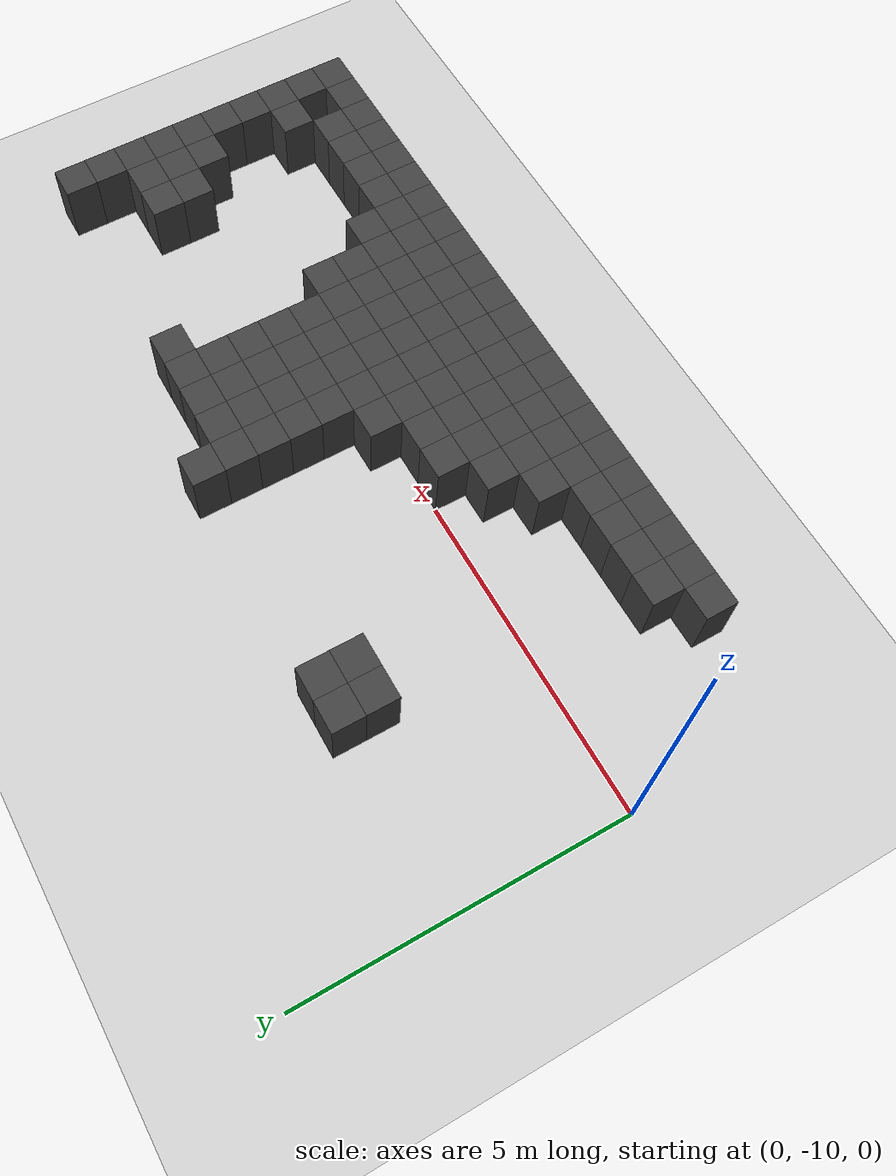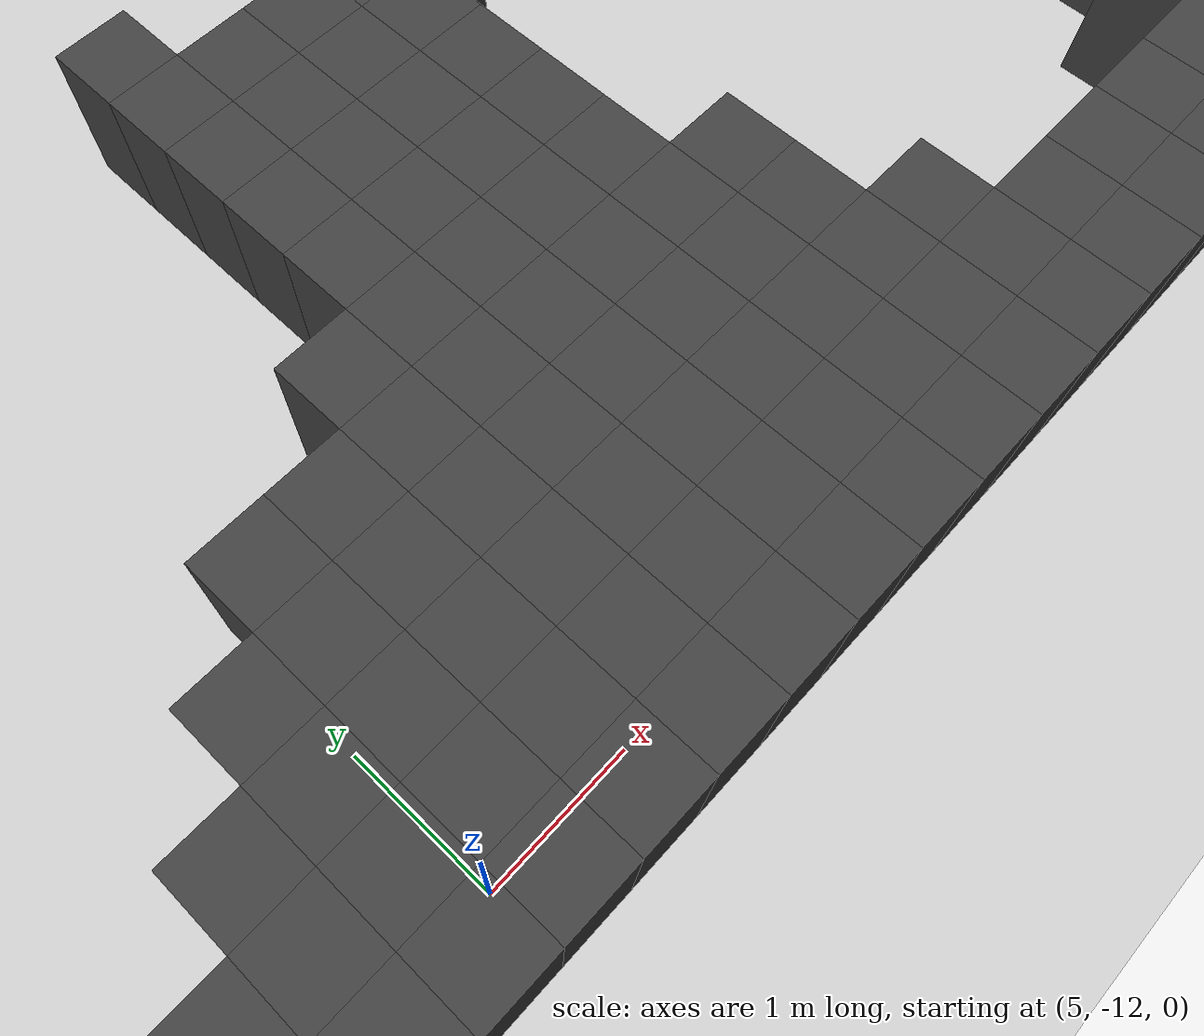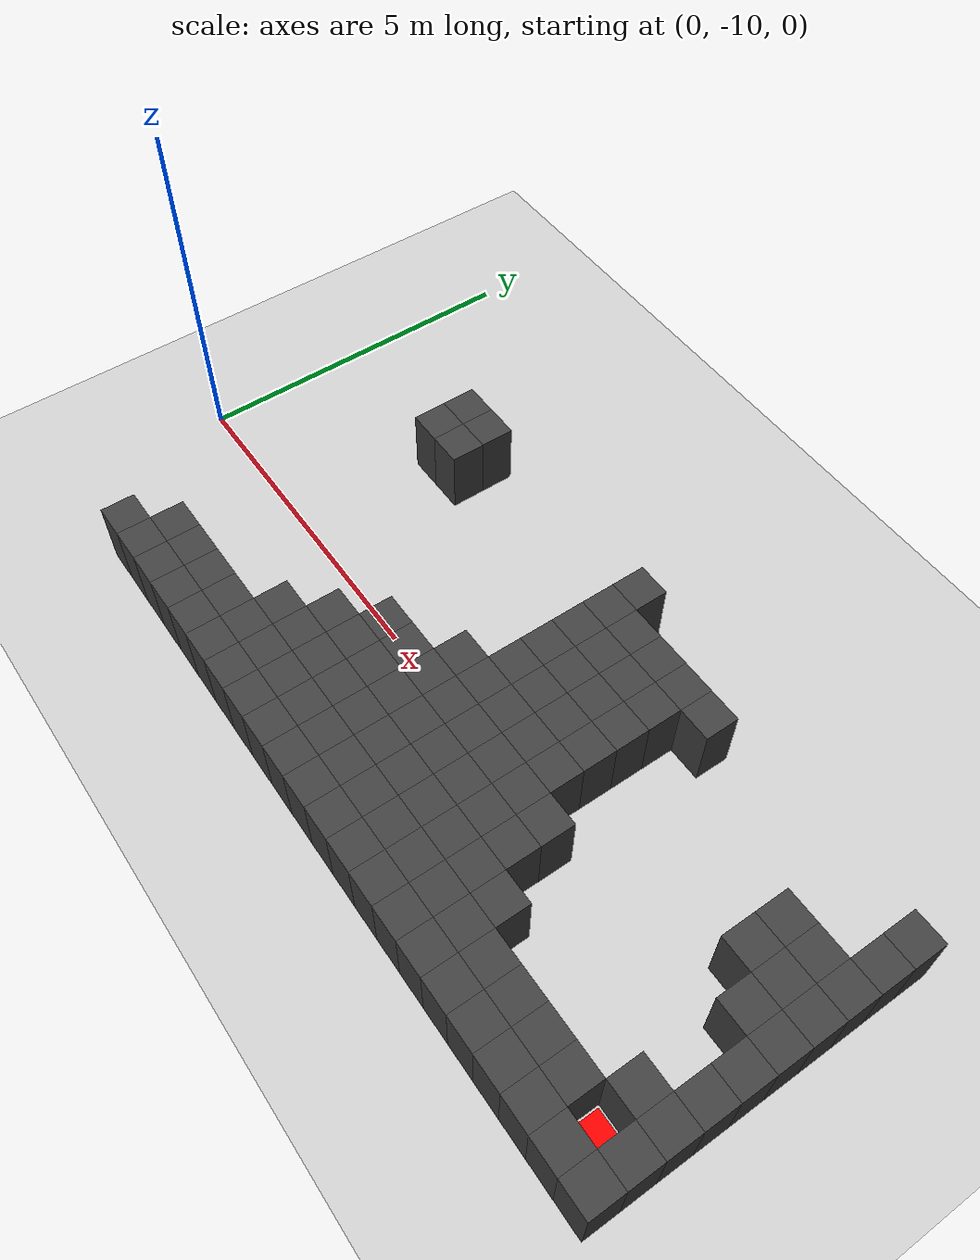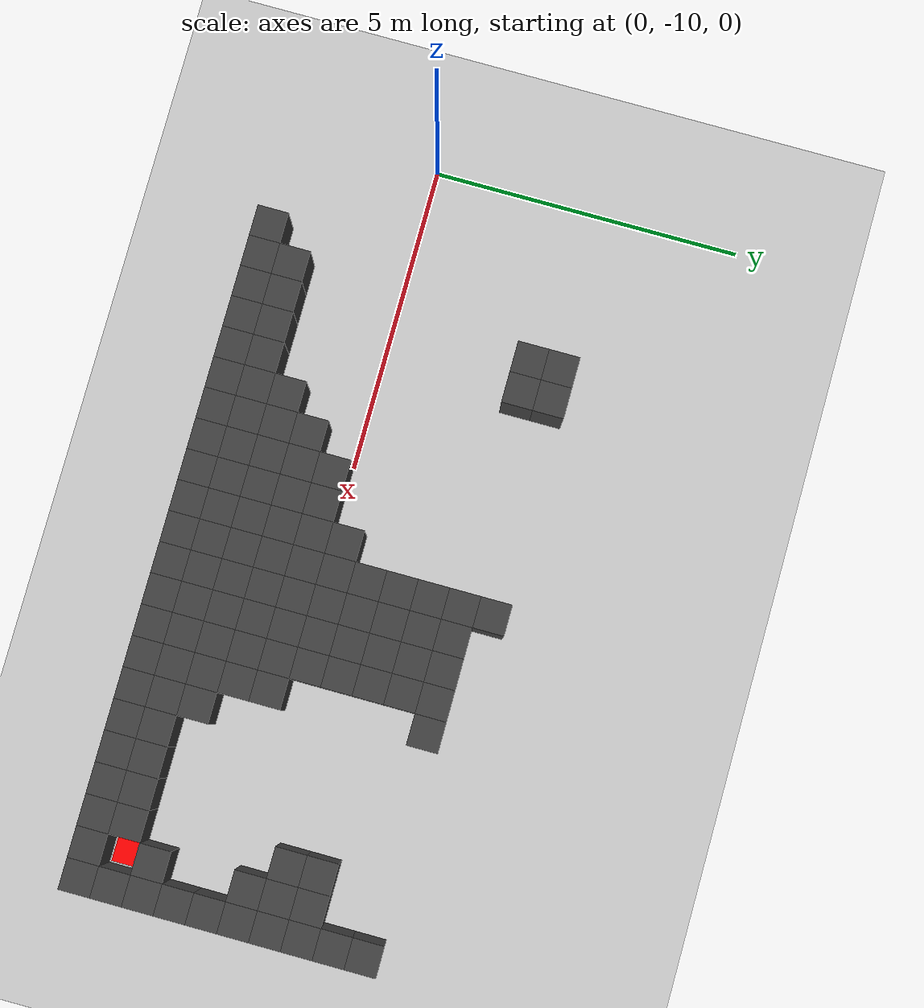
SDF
<sdf version="1.7">
 <world name="map_9405">
  <model name="ground_plane">
   <static>true</static>
   <link name="link">
    <collision name="collision">
     <geometry><plane><normal>0 0 1</normal><size>200 200</size></plane></geometry>
    </collision>
    <visual name="visual">
     <geometry><plane><normal>0 0 1</normal><size>200 200</size></plane></geometry>
     <material><ambient>0.8 0.8 0.8 1</ambient><diffuse>0.8 0.8 0.8 1</diffuse></material>
    </visual>
   </link>
  </model>
  <model name="maze_environment">
   <static>true</static>
   <link name="wall_666">
    <pose>2.750 -7.250 0.500 0 0 0</pose>
    <collision name="col"><geometry><box><size>0.5 0.5 1.0</size></box></geometry></collision>
    <visual name="vis">
     <geometry><box><size>0.5 0.5 1.0</size></box></geometry>
     <material><ambient>0.15 0.15 0.15 1</ambient><diffuse>0.25 0.25 0.25 1</diffuse></material>
    </visual>
   </link>
   <link name="wall_667">
    <pose>3.250 -7.250 0.500 0 0 0</pose>
    <collision name="col"><geometry><box><size>0.5 0.5 1.0</size></box></geometry></collision>
    <visual name="vis">
     <geometry><box><size>0.5 0.5 1.0</size></box></geometry>
     <material><ambient>0.15 0.15 0.15 1</ambient><diffuse>0.25 0.25 0.25 1</diffuse></material>
    </visual>
   </link>
   <link name="wall_668">
    <pose>6.750 -7.250 0.500 0 0 0</pose>
    <collision name="col"><geometry><box><size>0.5 0.5 1.0</size></box></geometry></collision>
    <visual name="vis">
     <geometry><box><size>0.5 0.5 1.0</size></box></geometry>
     <material><ambient>0.15 0.15 0.15 1</ambient><diffuse>0.25 0.25 0.25 1</diffuse></material>
    </visual>
   </link>
   <link name="wall_684">
    <pose>2.750 -7.750 0.500 0 0 0</pose>
    <collision name="col"><geometry><box><size>0.5 0.5 1.0</size></box></geometry></collision>
    <visual name="vis">
     <geometry><box><size>0.5 0.5 1.0</size></box></geometry>
     <material><ambient>0.15 0.15 0.15 1</ambient><diffuse>0.25 0.25 0.25 1</diffuse></material>
    </visual>
   </link>
   <link name="wall_685">
    <pose>3.250 -7.750 0.500 0 0 0</pose>
    <collision name="col"><geometry><box><size>0.5 0.5 1.0</size></box></geometry></collision>
    <visual name="vis">
     <geometry><box><size>0.5 0.5 1.0</size></box></geometry>
     <material><ambient>0.15 0.15 0.15 1</ambient><diffuse>0.25 0.25 0.25 1</diffuse></material>
    </visual>
   </link>
   <link name="wall_686">
    <pose>6.750 -7.750 0.500 0 0 0</pose>
    <collision name="col"><geometry><box><size>0.5 0.5 1.0</size></box></geometry></collision>
    <visual name="vis">
     <geometry><box><size>0.5 0.5 1.0</size></box></geometry>
     <material><ambient>0.15 0.15 0.15 1</ambient><diffuse>0.25 0.25 0.25 1</diffuse></material>
    </visual>
   </link>
   <link name="wall_687">
    <pose>7.250 -7.750 0.500 0 0 0</pose>
    <collision name="col"><geometry><box><size>0.5 0.5 1.0</size></box></geometry></collision>
    <visual name="vis">
     <geometry><box><size>0.5 0.5 1.0</size></box></geometry>
     <material><ambient>0.15 0.15 0.15 1</ambient><diffuse>0.25 0.25 0.25 1</diffuse></material>
    </visual>
   </link>
   <link name="wall_688">
    <pose>7.750 -7.750 0.500 0 0 0</pose>
    <collision name="col"><geometry><box><size>0.5 0.5 1.0</size></box></geometry></collision>
    <visual name="vis">
     <geometry><box><size>0.5 0.5 1.0</size></box></geometry>
     <material><ambient>0.15 0.15 0.15 1</ambient><diffuse>0.25 0.25 0.25 1</diffuse></material>
    </visual>
   </link>
   <link name="wall_689">
    <pose>8.250 -7.750 0.500 0 0 0</pose>
    <collision name="col"><geometry><box><size>0.5 0.5 1.0</size></box></geometry></collision>
    <visual name="vis">
     <geometry><box><size>0.5 0.5 1.0</size></box></geometry>
     <material><ambient>0.15 0.15 0.15 1</ambient><diffuse>0.25 0.25 0.25 1</diffuse></material>
    </visual>
   </link>
   <link name="wall_690">
    <pose>8.750 -7.750 0.500 0 0 0</pose>
    <collision name="col"><geometry><box><size>0.5 0.5 1.0</size></box></geometry></collision>
    <visual name="vis">
     <geometry><box><size>0.5 0.5 1.0</size></box></geometry>
     <material><ambient>0.15 0.15 0.15 1</ambient><diffuse>0.25 0.25 0.25 1</diffuse></material>
    </visual>
   </link>
   <link name="wall_691">
    <pose>12.250 -7.750 0.500 0 0 0</pose>
    <collision name="col"><geometry><box><size>0.5 0.5 1.0</size></box></geometry></collision>
    <visual name="vis">
     <geometry><box><size>0.5 0.5 1.0</size></box></geometry>
     <material><ambient>0.15 0.15 0.15 1</ambient><diffuse>0.25 0.25 0.25 1</diffuse></material>
    </visual>
   </link>
   <link name="wall_704">
    <pose>6.750 -8.250 0.500 0 0 0</pose>
    <collision name="col"><geometry><box><size>0.5 0.5 1.0</size></box></geometry></collision>
    <visual name="vis">
     <geometry><box><size>0.5 0.5 1.0</size></box></geometry>
     <material><ambient>0.15 0.15 0.15 1</ambient><diffuse>0.25 0.25 0.25 1</diffuse></material>
    </visual>
   </link>
   <link name="wall_705">
    <pose>7.250 -8.250 0.500 0 0 0</pose>
    <collision name="col"><geometry><box><size>0.5 0.5 1.0</size></box></geometry></collision>
    <visual name="vis">
     <geometry><box><size>0.5 0.5 1.0</size></box></geometry>
     <material><ambient>0.15 0.15 0.15 1</ambient><diffuse>0.25 0.25 0.25 1</diffuse></material>
    </visual>
   </link>
   <link name="wall_706">
    <pose>7.750 -8.250 0.500 0 0 0</pose>
    <collision name="col"><geometry><box><size>0.5 0.5 1.0</size></box></geometry></collision>
    <visual name="vis">
     <geometry><box><size>0.5 0.5 1.0</size></box></geometry>
     <material><ambient>0.15 0.15 0.15 1</ambient><diffuse>0.25 0.25 0.25 1</diffuse></material>
    </visual>
   </link>
   <link name="wall_707">
    <pose>8.250 -8.250 0.500 0 0 0</pose>
    <collision name="col"><geometry><box><size>0.5 0.5 1.0</size></box></geometry></collision>
    <visual name="vis">
     <geometry><box><size>0.5 0.5 1.0</size></box></geometry>
     <material><ambient>0.15 0.15 0.15 1</ambient><diffuse>0.25 0.25 0.25 1</diffuse></material>
    </visual>
   </link>
   <link name="wall_708">
    <pose>12.250 -8.250 0.500 0 0 0</pose>
    <collision name="col"><geometry><box><size>0.5 0.5 1.0</size></box></geometry></collision>
    <visual name="vis">
     <geometry><box><size>0.5 0.5 1.0</size></box></geometry>
     <material><ambient>0.15 0.15 0.15 1</ambient><diffuse>0.25 0.25 0.25 1</diffuse></material>
    </visual>
   </link>
   <link name="wall_719">
    <pose>6.750 -8.750 0.500 0 0 0</pose>
    <collision name="col"><geometry><box><size>0.5 0.5 1.0</size></box></geometry></collision>
    <visual name="vis">
     <geometry><box><size>0.5 0.5 1.0</size></box></geometry>
     <material><ambient>0.15 0.15 0.15 1</ambient><diffuse>0.25 0.25 0.25 1</diffuse></material>
    </visual>
   </link>
   <link name="wall_720">
    <pose>7.250 -8.750 0.500 0 0 0</pose>
    <collision name="col"><geometry><box><size>0.5 0.5 1.0</size></box></geometry></collision>
    <visual name="vis">
     <geometry><box><size>0.5 0.5 1.0</size></box></geometry>
     <material><ambient>0.15 0.15 0.15 1</ambient><diffuse>0.25 0.25 0.25 1</diffuse></material>
    </visual>
   </link>
   <link name="wall_721">
    <pose>7.750 -8.750 0.500 0 0 0</pose>
    <collision name="col"><geometry><box><size>0.5 0.5 1.0</size></box></geometry></collision>
    <visual name="vis">
     <geometry><box><size>0.5 0.5 1.0</size></box></geometry>
     <material><ambient>0.15 0.15 0.15 1</ambient><diffuse>0.25 0.25 0.25 1</diffuse></material>
    </visual>
   </link>
   <link name="wall_722">
    <pose>8.250 -8.750 0.500 0 0 0</pose>
    <collision name="col"><geometry><box><size>0.5 0.5 1.0</size></box></geometry></collision>
    <visual name="vis">
     <geometry><box><size>0.5 0.5 1.0</size></box></geometry>
     <material><ambient>0.15 0.15 0.15 1</ambient><diffuse>0.25 0.25 0.25 1</diffuse></material>
    </visual>
   </link>
   <link name="wall_723">
    <pose>11.250 -8.750 0.500 0 0 0</pose>
    <collision name="col"><geometry><box><size>0.5 0.5 1.0</size></box></geometry></collision>
    <visual name="vis">
     <geometry><box><size>0.5 0.5 1.0</size></box></geometry>
     <material><ambient>0.15 0.15 0.15 1</ambient><diffuse>0.25 0.25 0.25 1</diffuse></material>
    </visual>
   </link>
   <link name="wall_724">
    <pose>11.750 -8.750 0.500 0 0 0</pose>
    <collision name="col"><geometry><box><size>0.5 0.5 1.0</size></box></geometry></collision>
    <visual name="vis">
     <geometry><box><size>0.5 0.5 1.0</size></box></geometry>
     <material><ambient>0.15 0.15 0.15 1</ambient><diffuse>0.25 0.25 0.25 1</diffuse></material>
    </visual>
   </link>
   <link name="wall_725">
    <pose>12.250 -8.750 0.500 0 0 0</pose>
    <collision name="col"><geometry><box><size>0.5 0.5 1.0</size></box></geometry></collision>
    <visual name="vis">
     <geometry><box><size>0.5 0.5 1.0</size></box></geometry>
     <material><ambient>0.15 0.15 0.15 1</ambient><diffuse>0.25 0.25 0.25 1</diffuse></material>
    </visual>
   </link>
   <link name="wall_732">
    <pose>6.750 -9.250 0.500 0 0 0</pose>
    <collision name="col"><geometry><box><size>0.5 0.5 1.0</size></box></geometry></collision>
    <visual name="vis">
     <geometry><box><size>0.5 0.5 1.0</size></box></geometry>
     <material><ambient>0.15 0.15 0.15 1</ambient><diffuse>0.25 0.25 0.25 1</diffuse></material>
    </visual>
   </link>
   <link name="wall_733">
    <pose>7.250 -9.250 0.500 0 0 0</pose>
    <collision name="col"><geometry><box><size>0.5 0.5 1.0</size></box></geometry></collision>
    <visual name="vis">
     <geometry><box><size>0.5 0.5 1.0</size></box></geometry>
     <material><ambient>0.15 0.15 0.15 1</ambient><diffuse>0.25 0.25 0.25 1</diffuse></material>
    </visual>
   </link>
   <link name="wall_734">
    <pose>7.750 -9.250 0.500 0 0 0</pose>
    <collision name="col"><geometry><box><size>0.5 0.5 1.0</size></box></geometry></collision>
    <visual name="vis">
     <geometry><box><size>0.5 0.5 1.0</size></box></geometry>
     <material><ambient>0.15 0.15 0.15 1</ambient><diffuse>0.25 0.25 0.25 1</diffuse></material>
    </visual>
   </link>
   <link name="wall_735">
    <pose>8.250 -9.250 0.500 0 0 0</pose>
    <collision name="col"><geometry><box><size>0.5 0.5 1.0</size></box></geometry></collision>
    <visual name="vis">
     <geometry><box><size>0.5 0.5 1.0</size></box></geometry>
     <material><ambient>0.15 0.15 0.15 1</ambient><diffuse>0.25 0.25 0.25 1</diffuse></material>
    </visual>
   </link>
   <link name="wall_736">
    <pose>11.250 -9.250 0.500 0 0 0</pose>
    <collision name="col"><geometry><box><size>0.5 0.5 1.0</size></box></geometry></collision>
    <visual name="vis">
     <geometry><box><size>0.5 0.5 1.0</size></box></geometry>
     <material><ambient>0.15 0.15 0.15 1</ambient><diffuse>0.25 0.25 0.25 1</diffuse></material>
    </visual>
   </link>
   <link name="wall_737">
    <pose>11.750 -9.250 0.500 0 0 0</pose>
    <collision name="col"><geometry><box><size>0.5 0.5 1.0</size></box></geometry></collision>
    <visual name="vis">
     <geometry><box><size>0.5 0.5 1.0</size></box></geometry>
     <material><ambient>0.15 0.15 0.15 1</ambient><diffuse>0.25 0.25 0.25 1</diffuse></material>
    </visual>
   </link>
   <link name="wall_738">
    <pose>12.250 -9.250 0.500 0 0 0</pose>
    <collision name="col"><geometry><box><size>0.5 0.5 1.0</size></box></geometry></collision>
    <visual name="vis">
     <geometry><box><size>0.5 0.5 1.0</size></box></geometry>
     <material><ambient>0.15 0.15 0.15 1</ambient><diffuse>0.25 0.25 0.25 1</diffuse></material>
    </visual>
   </link>
   <link name="wall_744">
    <pose>6.250 -9.750 0.500 0 0 0</pose>
    <collision name="col"><geometry><box><size>0.5 0.5 1.0</size></box></geometry></collision>
    <visual name="vis">
     <geometry><box><size>0.5 0.5 1.0</size></box></geometry>
     <material><ambient>0.15 0.15 0.15 1</ambient><diffuse>0.25 0.25 0.25 1</diffuse></material>
    </visual>
   </link>
   <link name="wall_745">
    <pose>6.750 -9.750 0.500 0 0 0</pose>
    <collision name="col"><geometry><box><size>0.5 0.5 1.0</size></box></geometry></collision>
    <visual name="vis">
     <geometry><box><size>0.5 0.5 1.0</size></box></geometry>
     <material><ambient>0.15 0.15 0.15 1</ambient><diffuse>0.25 0.25 0.25 1</diffuse></material>
    </visual>
   </link>
   <link name="wall_746">
    <pose>7.250 -9.750 0.500 0 0 0</pose>
    <collision name="col"><geometry><box><size>0.5 0.5 1.0</size></box></geometry></collision>
    <visual name="vis">
     <geometry><box><size>0.5 0.5 1.0</size></box></geometry>
     <material><ambient>0.15 0.15 0.15 1</ambient><diffuse>0.25 0.25 0.25 1</diffuse></material>
    </visual>
   </link>
   <link name="wall_747">
    <pose>7.750 -9.750 0.500 0 0 0</pose>
    <collision name="col"><geometry><box><size>0.5 0.5 1.0</size></box></geometry></collision>
    <visual name="vis">
     <geometry><box><size>0.5 0.5 1.0</size></box></geometry>
     <material><ambient>0.15 0.15 0.15 1</ambient><diffuse>0.25 0.25 0.25 1</diffuse></material>
    </visual>
   </link>
   <link name="wall_748">
    <pose>8.250 -9.750 0.500 0 0 0</pose>
    <collision name="col"><geometry><box><size>0.5 0.5 1.0</size></box></geometry></collision>
    <visual name="vis">
     <geometry><box><size>0.5 0.5 1.0</size></box></geometry>
     <material><ambient>0.15 0.15 0.15 1</ambient><diffuse>0.25 0.25 0.25 1</diffuse></material>
    </visual>
   </link>
   <link name="wall_749">
    <pose>11.750 -9.750 0.500 0 0 0</pose>
    <collision name="col"><geometry><box><size>0.5 0.5 1.0</size></box></geometry></collision>
    <visual name="vis">
     <geometry><box><size>0.5 0.5 1.0</size></box></geometry>
     <material><ambient>0.15 0.15 0.15 1</ambient><diffuse>0.25 0.25 0.25 1</diffuse></material>
    </visual>
   </link>
   <link name="wall_750">
    <pose>12.250 -9.750 0.500 0 0 0</pose>
    <collision name="col"><geometry><box><size>0.5 0.5 1.0</size></box></geometry></collision>
    <visual name="vis">
     <geometry><box><size>0.5 0.5 1.0</size></box></geometry>
     <material><ambient>0.15 0.15 0.15 1</ambient><diffuse>0.25 0.25 0.25 1</diffuse></material>
    </visual>
   </link>
   <link name="wall_755">
    <pose>5.250 -10.250 0.500 0 0 0</pose>
    <collision name="col"><geometry><box><size>0.5 0.5 1.0</size></box></geometry></collision>
    <visual name="vis">
     <geometry><box><size>0.5 0.5 1.0</size></box></geometry>
     <material><ambient>0.15 0.15 0.15 1</ambient><diffuse>0.25 0.25 0.25 1</diffuse></material>
    </visual>
   </link>
   <link name="wall_756">
    <pose>5.750 -10.250 0.500 0 0 0</pose>
    <collision name="col"><geometry><box><size>0.5 0.5 1.0</size></box></geometry></collision>
    <visual name="vis">
     <geometry><box><size>0.5 0.5 1.0</size></box></geometry>
     <material><ambient>0.15 0.15 0.15 1</ambient><diffuse>0.25 0.25 0.25 1</diffuse></material>
    </visual>
   </link>
   <link name="wall_757">
    <pose>6.250 -10.250 0.500 0 0 0</pose>
    <collision name="col"><geometry><box><size>0.5 0.5 1.0</size></box></geometry></collision>
    <visual name="vis">
     <geometry><box><size>0.5 0.5 1.0</size></box></geometry>
     <material><ambient>0.15 0.15 0.15 1</ambient><diffuse>0.25 0.25 0.25 1</diffuse></material>
    </visual>
   </link>
   <link name="wall_758">
    <pose>6.750 -10.250 0.500 0 0 0</pose>
    <collision name="col"><geometry><box><size>0.5 0.5 1.0</size></box></geometry></collision>
    <visual name="vis">
     <geometry><box><size>0.5 0.5 1.0</size></box></geometry>
     <material><ambient>0.15 0.15 0.15 1</ambient><diffuse>0.25 0.25 0.25 1</diffuse></material>
    </visual>
   </link>
   <link name="wall_759">
    <pose>7.250 -10.250 0.500 0 0 0</pose>
    <collision name="col"><geometry><box><size>0.5 0.5 1.0</size></box></geometry></collision>
    <visual name="vis">
     <geometry><box><size>0.5 0.5 1.0</size></box></geometry>
     <material><ambient>0.15 0.15 0.15 1</ambient><diffuse>0.25 0.25 0.25 1</diffuse></material>
    </visual>
   </link>
   <link name="wall_760">
    <pose>7.750 -10.250 0.500 0 0 0</pose>
    <collision name="col"><geometry><box><size>0.5 0.5 1.0</size></box></geometry></collision>
    <visual name="vis">
     <geometry><box><size>0.5 0.5 1.0</size></box></geometry>
     <material><ambient>0.15 0.15 0.15 1</ambient><diffuse>0.25 0.25 0.25 1</diffuse></material>
    </visual>
   </link>
   <link name="wall_761">
    <pose>8.250 -10.250 0.500 0 0 0</pose>
    <collision name="col"><geometry><box><size>0.5 0.5 1.0</size></box></geometry></collision>
    <visual name="vis">
     <geometry><box><size>0.5 0.5 1.0</size></box></geometry>
     <material><ambient>0.15 0.15 0.15 1</ambient><diffuse>0.25 0.25 0.25 1</diffuse></material>
    </visual>
   </link>
   <link name="wall_762">
    <pose>8.750 -10.250 0.500 0 0 0</pose>
    <collision name="col"><geometry><box><size>0.5 0.5 1.0</size></box></geometry></collision>
    <visual name="vis">
     <geometry><box><size>0.5 0.5 1.0</size></box></geometry>
     <material><ambient>0.15 0.15 0.15 1</ambient><diffuse>0.25 0.25 0.25 1</diffuse></material>
    </visual>
   </link>
   <link name="wall_763">
    <pose>12.250 -10.250 0.500 0 0 0</pose>
    <collision name="col"><geometry><box><size>0.5 0.5 1.0</size></box></geometry></collision>
    <visual name="vis">
     <geometry><box><size>0.5 0.5 1.0</size></box></geometry>
     <material><ambient>0.15 0.15 0.15 1</ambient><diffuse>0.25 0.25 0.25 1</diffuse></material>
    </visual>
   </link>
   <link name="wall_772">
    <pose>4.750 -10.750 0.500 0 0 0</pose>
    <collision name="col"><geometry><box><size>0.5 0.5 1.0</size></box></geometry></collision>
    <visual name="vis">
     <geometry><box><size>0.5 0.5 1.0</size></box></geometry>
     <material><ambient>0.15 0.15 0.15 1</ambient><diffuse>0.25 0.25 0.25 1</diffuse></material>
    </visual>
   </link>
   <link name="wall_773">
    <pose>5.250 -10.750 0.500 0 0 0</pose>
    <collision name="col"><geometry><box><size>0.5 0.5 1.0</size></box></geometry></collision>
    <visual name="vis">
     <geometry><box><size>0.5 0.5 1.0</size></box></geometry>
     <material><ambient>0.15 0.15 0.15 1</ambient><diffuse>0.25 0.25 0.25 1</diffuse></material>
    </visual>
   </link>
   <link name="wall_774">
    <pose>5.750 -10.750 0.500 0 0 0</pose>
    <collision name="col"><geometry><box><size>0.5 0.5 1.0</size></box></geometry></collision>
    <visual name="vis">
     <geometry><box><size>0.5 0.5 1.0</size></box></geometry>
     <material><ambient>0.15 0.15 0.15 1</ambient><diffuse>0.25 0.25 0.25 1</diffuse></material>
    </visual>
   </link>
   <link name="wall_775">
    <pose>6.250 -10.750 0.500 0 0 0</pose>
    <collision name="col"><geometry><box><size>0.5 0.5 1.0</size></box></geometry></collision>
    <visual name="vis">
     <geometry><box><size>0.5 0.5 1.0</size></box></geometry>
     <material><ambient>0.15 0.15 0.15 1</ambient><diffuse>0.25 0.25 0.25 1</diffuse></material>
    </visual>
   </link>
   <link name="wall_776">
    <pose>6.750 -10.750 0.500 0 0 0</pose>
    <collision name="col"><geometry><box><size>0.5 0.5 1.0</size></box></geometry></collision>
    <visual name="vis">
     <geometry><box><size>0.5 0.5 1.0</size></box></geometry>
     <material><ambient>0.15 0.15 0.15 1</ambient><diffuse>0.25 0.25 0.25 1</diffuse></material>
    </visual>
   </link>
   <link name="wall_777">
    <pose>7.250 -10.750 0.500 0 0 0</pose>
    <collision name="col"><geometry><box><size>0.5 0.5 1.0</size></box></geometry></collision>
    <visual name="vis">
     <geometry><box><size>0.5 0.5 1.0</size></box></geometry>
     <material><ambient>0.15 0.15 0.15 1</ambient><diffuse>0.25 0.25 0.25 1</diffuse></material>
    </visual>
   </link>
   <link name="wall_778">
    <pose>7.750 -10.750 0.500 0 0 0</pose>
    <collision name="col"><geometry><box><size>0.5 0.5 1.0</size></box></geometry></collision>
    <visual name="vis">
     <geometry><box><size>0.5 0.5 1.0</size></box></geometry>
     <material><ambient>0.15 0.15 0.15 1</ambient><diffuse>0.25 0.25 0.25 1</diffuse></material>
    </visual>
   </link>
   <link name="wall_779">
    <pose>8.250 -10.750 0.500 0 0 0</pose>
    <collision name="col"><geometry><box><size>0.5 0.5 1.0</size></box></geometry></collision>
    <visual name="vis">
     <geometry><box><size>0.5 0.5 1.0</size></box></geometry>
     <material><ambient>0.15 0.15 0.15 1</ambient><diffuse>0.25 0.25 0.25 1</diffuse></material>
    </visual>
   </link>
   <link name="wall_780">
    <pose>8.750 -10.750 0.500 0 0 0</pose>
    <collision name="col"><geometry><box><size>0.5 0.5 1.0</size></box></geometry></collision>
    <visual name="vis">
     <geometry><box><size>0.5 0.5 1.0</size></box></geometry>
     <material><ambient>0.15 0.15 0.15 1</ambient><diffuse>0.25 0.25 0.25 1</diffuse></material>
    </visual>
   </link>
   <link name="wall_781">
    <pose>12.250 -10.750 0.500 0 0 0</pose>
    <collision name="col"><geometry><box><size>0.5 0.5 1.0</size></box></geometry></collision>
    <visual name="vis">
     <geometry><box><size>0.5 0.5 1.0</size></box></geometry>
     <material><ambient>0.15 0.15 0.15 1</ambient><diffuse>0.25 0.25 0.25 1</diffuse></material>
    </visual>
   </link>
   <link name="wall_794">
    <pose>4.250 -11.250 0.500 0 0 0</pose>
    <collision name="col"><geometry><box><size>0.5 0.5 1.0</size></box></geometry></collision>
    <visual name="vis">
     <geometry><box><size>0.5 0.5 1.0</size></box></geometry>
     <material><ambient>0.15 0.15 0.15 1</ambient><diffuse>0.25 0.25 0.25 1</diffuse></material>
    </visual>
   </link>
   <link name="wall_795">
    <pose>4.750 -11.250 0.500 0 0 0</pose>
    <collision name="col"><geometry><box><size>0.5 0.5 1.0</size></box></geometry></collision>
    <visual name="vis">
     <geometry><box><size>0.5 0.5 1.0</size></box></geometry>
     <material><ambient>0.15 0.15 0.15 1</ambient><diffuse>0.25 0.25 0.25 1</diffuse></material>
    </visual>
   </link>
   <link name="wall_796">
    <pose>5.250 -11.250 0.500 0 0 0</pose>
    <collision name="col"><geometry><box><size>0.5 0.5 1.0</size></box></geometry></collision>
    <visual name="vis">
     <geometry><box><size>0.5 0.5 1.0</size></box></geometry>
     <material><ambient>0.15 0.15 0.15 1</ambient><diffuse>0.25 0.25 0.25 1</diffuse></material>
    </visual>
   </link>
   <link name="wall_797">
    <pose>5.750 -11.250 0.500 0 0 0</pose>
    <collision name="col"><geometry><box><size>0.5 0.5 1.0</size></box></geometry></collision>
    <visual name="vis">
     <geometry><box><size>0.5 0.5 1.0</size></box></geometry>
     <material><ambient>0.15 0.15 0.15 1</ambient><diffuse>0.25 0.25 0.25 1</diffuse></material>
    </visual>
   </link>
   <link name="wall_798">
    <pose>6.250 -11.250 0.500 0 0 0</pose>
    <collision name="col"><geometry><box><size>0.5 0.5 1.0</size></box></geometry></collision>
    <visual name="vis">
     <geometry><box><size>0.5 0.5 1.0</size></box></geometry>
     <material><ambient>0.15 0.15 0.15 1</ambient><diffuse>0.25 0.25 0.25 1</diffuse></material>
    </visual>
   </link>
   <link name="wall_799">
    <pose>6.750 -11.250 0.500 0 0 0</pose>
    <collision name="col"><geometry><box><size>0.5 0.5 1.0</size></box></geometry></collision>
    <visual name="vis">
     <geometry><box><size>0.5 0.5 1.0</size></box></geometry>
     <material><ambient>0.15 0.15 0.15 1</ambient><diffuse>0.25 0.25 0.25 1</diffuse></material>
    </visual>
   </link>
   <link name="wall_800">
    <pose>7.250 -11.250 0.500 0 0 0</pose>
    <collision name="col"><geometry><box><size>0.5 0.5 1.0</size></box></geometry></collision>
    <visual name="vis">
     <geometry><box><size>0.5 0.5 1.0</size></box></geometry>
     <material><ambient>0.15 0.15 0.15 1</ambient><diffuse>0.25 0.25 0.25 1</diffuse></material>
    </visual>
   </link>
   <link name="wall_801">
    <pose>7.750 -11.250 0.500 0 0 0</pose>
    <collision name="col"><geometry><box><size>0.5 0.5 1.0</size></box></geometry></collision>
    <visual name="vis">
     <geometry><box><size>0.5 0.5 1.0</size></box></geometry>
     <material><ambient>0.15 0.15 0.15 1</ambient><diffuse>0.25 0.25 0.25 1</diffuse></material>
    </visual>
   </link>
   <link name="wall_802">
    <pose>8.250 -11.250 0.500 0 0 0</pose>
    <collision name="col"><geometry><box><size>0.5 0.5 1.0</size></box></geometry></collision>
    <visual name="vis">
     <geometry><box><size>0.5 0.5 1.0</size></box></geometry>
     <material><ambient>0.15 0.15 0.15 1</ambient><diffuse>0.25 0.25 0.25 1</diffuse></material>
    </visual>
   </link>
   <link name="wall_803">
    <pose>8.750 -11.250 0.500 0 0 0</pose>
    <collision name="col"><geometry><box><size>0.5 0.5 1.0</size></box></geometry></collision>
    <visual name="vis">
     <geometry><box><size>0.5 0.5 1.0</size></box></geometry>
     <material><ambient>0.15 0.15 0.15 1</ambient><diffuse>0.25 0.25 0.25 1</diffuse></material>
    </visual>
   </link>
   <link name="wall_804">
    <pose>9.250 -11.250 0.500 0 0 0</pose>
    <collision name="col"><geometry><box><size>0.5 0.5 1.0</size></box></geometry></collision>
    <visual name="vis">
     <geometry><box><size>0.5 0.5 1.0</size></box></geometry>
     <material><ambient>0.15 0.15 0.15 1</ambient><diffuse>0.25 0.25 0.25 1</diffuse></material>
    </visual>
   </link>
   <link name="wall_805">
    <pose>11.750 -11.250 0.500 0 0 0</pose>
    <collision name="col"><geometry><box><size>0.5 0.5 1.0</size></box></geometry></collision>
    <visual name="vis">
     <geometry><box><size>0.5 0.5 1.0</size></box></geometry>
     <material><ambient>0.15 0.15 0.15 1</ambient><diffuse>0.25 0.25 0.25 1</diffuse></material>
    </visual>
   </link>
   <link name="wall_806">
    <pose>12.250 -11.250 0.500 0 0 0</pose>
    <collision name="col"><geometry><box><size>0.5 0.5 1.0</size></box></geometry></collision>
    <visual name="vis">
     <geometry><box><size>0.5 0.5 1.0</size></box></geometry>
     <material><ambient>0.15 0.15 0.15 1</ambient><diffuse>0.25 0.25 0.25 1</diffuse></material>
    </visual>
   </link>
   <link name="wall_827">
    <pose>2.250 -11.750 0.500 0 0 0</pose>
    <collision name="col"><geometry><box><size>0.5 0.5 1.0</size></box></geometry></collision>
    <visual name="vis">
     <geometry><box><size>0.5 0.5 1.0</size></box></geometry>
     <material><ambient>0.15 0.15 0.15 1</ambient><diffuse>0.25 0.25 0.25 1</diffuse></material>
    </visual>
   </link>
   <link name="wall_828">
    <pose>2.750 -11.750 0.500 0 0 0</pose>
    <collision name="col"><geometry><box><size>0.5 0.5 1.0</size></box></geometry></collision>
    <visual name="vis">
     <geometry><box><size>0.5 0.5 1.0</size></box></geometry>
     <material><ambient>0.15 0.15 0.15 1</ambient><diffuse>0.25 0.25 0.25 1</diffuse></material>
    </visual>
   </link>
   <link name="wall_829">
    <pose>3.250 -11.750 0.500 0 0 0</pose>
    <collision name="col"><geometry><box><size>0.5 0.5 1.0</size></box></geometry></collision>
    <visual name="vis">
     <geometry><box><size>0.5 0.5 1.0</size></box></geometry>
     <material><ambient>0.15 0.15 0.15 1</ambient><diffuse>0.25 0.25 0.25 1</diffuse></material>
    </visual>
   </link>
   <link name="wall_830">
    <pose>3.750 -11.750 0.500 0 0 0</pose>
    <collision name="col"><geometry><box><size>0.5 0.5 1.0</size></box></geometry></collision>
    <visual name="vis">
     <geometry><box><size>0.5 0.5 1.0</size></box></geometry>
     <material><ambient>0.15 0.15 0.15 1</ambient><diffuse>0.25 0.25 0.25 1</diffuse></material>
    </visual>
   </link>
   <link name="wall_831">
    <pose>4.250 -11.750 0.500 0 0 0</pose>
    <collision name="col"><geometry><box><size>0.5 0.5 1.0</size></box></geometry></collision>
    <visual name="vis">
     <geometry><box><size>0.5 0.5 1.0</size></box></geometry>
     <material><ambient>0.15 0.15 0.15 1</ambient><diffuse>0.25 0.25 0.25 1</diffuse></material>
    </visual>
   </link>
   <link name="wall_832">
    <pose>4.750 -11.750 0.500 0 0 0</pose>
    <collision name="col"><geometry><box><size>0.5 0.5 1.0</size></box></geometry></collision>
    <visual name="vis">
     <geometry><box><size>0.5 0.5 1.0</size></box></geometry>
     <material><ambient>0.15 0.15 0.15 1</ambient><diffuse>0.25 0.25 0.25 1</diffuse></material>
    </visual>
   </link>
   <link name="wall_833">
    <pose>5.250 -11.750 0.500 0 0 0</pose>
    <collision name="col"><geometry><box><size>0.5 0.5 1.0</size></box></geometry></collision>
    <visual name="vis">
     <geometry><box><size>0.5 0.5 1.0</size></box></geometry>
     <material><ambient>0.15 0.15 0.15 1</ambient><diffuse>0.25 0.25 0.25 1</diffuse></material>
    </visual>
   </link>
   <link name="wall_834">
    <pose>5.750 -11.750 0.500 0 0 0</pose>
    <collision name="col"><geometry><box><size>0.5 0.5 1.0</size></box></geometry></collision>
    <visual name="vis">
     <geometry><box><size>0.5 0.5 1.0</size></box></geometry>
     <material><ambient>0.15 0.15 0.15 1</ambient><diffuse>0.25 0.25 0.25 1</diffuse></material>
    </visual>
   </link>
   <link name="wall_835">
    <pose>6.250 -11.750 0.500 0 0 0</pose>
    <collision name="col"><geometry><box><size>0.5 0.5 1.0</size></box></geometry></collision>
    <visual name="vis">
     <geometry><box><size>0.5 0.5 1.0</size></box></geometry>
     <material><ambient>0.15 0.15 0.15 1</ambient><diffuse>0.25 0.25 0.25 1</diffuse></material>
    </visual>
   </link>
   <link name="wall_836">
    <pose>6.750 -11.750 0.500 0 0 0</pose>
    <collision name="col"><geometry><box><size>0.5 0.5 1.0</size></box></geometry></collision>
    <visual name="vis">
     <geometry><box><size>0.5 0.5 1.0</size></box></geometry>
     <material><ambient>0.15 0.15 0.15 1</ambient><diffuse>0.25 0.25 0.25 1</diffuse></material>
    </visual>
   </link>
   <link name="wall_837">
    <pose>7.250 -11.750 0.500 0 0 0</pose>
    <collision name="col"><geometry><box><size>0.5 0.5 1.0</size></box></geometry></collision>
    <visual name="vis">
     <geometry><box><size>0.5 0.5 1.0</size></box></geometry>
     <material><ambient>0.15 0.15 0.15 1</ambient><diffuse>0.25 0.25 0.25 1</diffuse></material>
    </visual>
   </link>
   <link name="wall_838">
    <pose>7.750 -11.750 0.500 0 0 0</pose>
    <collision name="col"><geometry><box><size>0.5 0.5 1.0</size></box></geometry></collision>
    <visual name="vis">
     <geometry><box><size>0.5 0.5 1.0</size></box></geometry>
     <material><ambient>0.15 0.15 0.15 1</ambient><diffuse>0.25 0.25 0.25 1</diffuse></material>
    </visual>
   </link>
   <link name="wall_839">
    <pose>8.250 -11.750 0.500 0 0 0</pose>
    <collision name="col"><geometry><box><size>0.5 0.5 1.0</size></box></geometry></collision>
    <visual name="vis">
     <geometry><box><size>0.5 0.5 1.0</size></box></geometry>
     <material><ambient>0.15 0.15 0.15 1</ambient><diffuse>0.25 0.25 0.25 1</diffuse></material>
    </visual>
   </link>
   <link name="wall_840">
    <pose>8.750 -11.750 0.500 0 0 0</pose>
    <collision name="col"><geometry><box><size>0.5 0.5 1.0</size></box></geometry></collision>
    <visual name="vis">
     <geometry><box><size>0.5 0.5 1.0</size></box></geometry>
     <material><ambient>0.15 0.15 0.15 1</ambient><diffuse>0.25 0.25 0.25 1</diffuse></material>
    </visual>
   </link>
   <link name="wall_841">
    <pose>9.250 -11.750 0.500 0 0 0</pose>
    <collision name="col"><geometry><box><size>0.5 0.5 1.0</size></box></geometry></collision>
    <visual name="vis">
     <geometry><box><size>0.5 0.5 1.0</size></box></geometry>
     <material><ambient>0.15 0.15 0.15 1</ambient><diffuse>0.25 0.25 0.25 1</diffuse></material>
    </visual>
   </link>
   <link name="wall_842">
    <pose>9.750 -11.750 0.500 0 0 0</pose>
    <collision name="col"><geometry><box><size>0.5 0.5 1.0</size></box></geometry></collision>
    <visual name="vis">
     <geometry><box><size>0.5 0.5 1.0</size></box></geometry>
     <material><ambient>0.15 0.15 0.15 1</ambient><diffuse>0.25 0.25 0.25 1</diffuse></material>
    </visual>
   </link>
   <link name="wall_843">
    <pose>10.250 -11.750 0.500 0 0 0</pose>
    <collision name="col"><geometry><box><size>0.5 0.5 1.0</size></box></geometry></collision>
    <visual name="vis">
     <geometry><box><size>0.5 0.5 1.0</size></box></geometry>
     <material><ambient>0.15 0.15 0.15 1</ambient><diffuse>0.25 0.25 0.25 1</diffuse></material>
    </visual>
   </link>
   <link name="wall_844">
    <pose>10.750 -11.750 0.500 0 0 0</pose>
    <collision name="col"><geometry><box><size>0.5 0.5 1.0</size></box></geometry></collision>
    <visual name="vis">
     <geometry><box><size>0.5 0.5 1.0</size></box></geometry>
     <material><ambient>0.15 0.15 0.15 1</ambient><diffuse>0.25 0.25 0.25 1</diffuse></material>
    </visual>
   </link>
   <link name="wall_845">
    <pose>11.250 -11.750 0.500 0 0 0</pose>
    <collision name="col"><geometry><box><size>0.5 0.5 1.0</size></box></geometry></collision>
    <visual name="vis">
     <geometry><box><size>0.5 0.5 1.0</size></box></geometry>
     <material><ambient>0.15 0.15 0.15 1</ambient><diffuse>0.25 0.25 0.25 1</diffuse></material>
    </visual>
   </link>
   <link name="wall_846">
    <pose>12.250 -11.750 0.500 0 0 0</pose>
    <collision name="col"><geometry><box><size>0.5 0.5 1.0</size></box></geometry></collision>
    <visual name="vis">
     <geometry><box><size>0.5 0.5 1.0</size></box></geometry>
     <material><ambient>0.15 0.15 0.15 1</ambient><diffuse>0.25 0.25 0.25 1</diffuse></material>
    </visual>
   </link>
   <link name="wall_875">
    <pose>1.750 -12.250 0.500 0 0 0</pose>
    <collision name="col"><geometry><box><size>0.5 0.5 1.0</size></box></geometry></collision>
    <visual name="vis">
     <geometry><box><size>0.5 0.5 1.0</size></box></geometry>
     <material><ambient>0.15 0.15 0.15 1</ambient><diffuse>0.25 0.25 0.25 1</diffuse></material>
    </visual>
   </link>
   <link name="wall_876">
    <pose>2.250 -12.250 0.500 0 0 0</pose>
    <collision name="col"><geometry><box><size>0.5 0.5 1.0</size></box></geometry></collision>
    <visual name="vis">
     <geometry><box><size>0.5 0.5 1.0</size></box></geometry>
     <material><ambient>0.15 0.15 0.15 1</ambient><diffuse>0.25 0.25 0.25 1</diffuse></material>
    </visual>
   </link>
   <link name="wall_877">
    <pose>2.750 -12.250 0.500 0 0 0</pose>
    <collision name="col"><geometry><box><size>0.5 0.5 1.0</size></box></geometry></collision>
    <visual name="vis">
     <geometry><box><size>0.5 0.5 1.0</size></box></geometry>
     <material><ambient>0.15 0.15 0.15 1</ambient><diffuse>0.25 0.25 0.25 1</diffuse></material>
    </visual>
   </link>
   <link name="wall_878">
    <pose>3.250 -12.250 0.500 0 0 0</pose>
    <collision name="col"><geometry><box><size>0.5 0.5 1.0</size></box></geometry></collision>
    <visual name="vis">
     <geometry><box><size>0.5 0.5 1.0</size></box></geometry>
     <material><ambient>0.15 0.15 0.15 1</ambient><diffuse>0.25 0.25 0.25 1</diffuse></material>
    </visual>
   </link>
   <link name="wall_879">
    <pose>3.750 -12.250 0.500 0 0 0</pose>
    <collision name="col"><geometry><box><size>0.5 0.5 1.0</size></box></geometry></collision>
    <visual name="vis">
     <geometry><box><size>0.5 0.5 1.0</size></box></geometry>
     <material><ambient>0.15 0.15 0.15 1</ambient><diffuse>0.25 0.25 0.25 1</diffuse></material>
    </visual>
   </link>
   <link name="wall_880">
    <pose>4.250 -12.250 0.500 0 0 0</pose>
    <collision name="col"><geometry><box><size>0.5 0.5 1.0</size></box></geometry></collision>
    <visual name="vis">
     <geometry><box><size>0.5 0.5 1.0</size></box></geometry>
     <material><ambient>0.15 0.15 0.15 1</ambient><diffuse>0.25 0.25 0.25 1</diffuse></material>
    </visual>
   </link>
   <link name="wall_881">
    <pose>4.750 -12.250 0.500 0 0 0</pose>
    <collision name="col"><geometry><box><size>0.5 0.5 1.0</size></box></geometry></collision>
    <visual name="vis">
     <geometry><box><size>0.5 0.5 1.0</size></box></geometry>
     <material><ambient>0.15 0.15 0.15 1</ambient><diffuse>0.25 0.25 0.25 1</diffuse></material>
    </visual>
   </link>
   <link name="wall_882">
    <pose>5.250 -12.250 0.500 0 0 0</pose>
    <collision name="col"><geometry><box><size>0.5 0.5 1.0</size></box></geometry></collision>
    <visual name="vis">
     <geometry><box><size>0.5 0.5 1.0</size></box></geometry>
     <material><ambient>0.15 0.15 0.15 1</ambient><diffuse>0.25 0.25 0.25 1</diffuse></material>
    </visual>
   </link>
   <link name="wall_883">
    <pose>5.750 -12.250 0.500 0 0 0</pose>
    <collision name="col"><geometry><box><size>0.5 0.5 1.0</size></box></geometry></collision>
    <visual name="vis">
     <geometry><box><size>0.5 0.5 1.0</size></box></geometry>
     <material><ambient>0.15 0.15 0.15 1</ambient><diffuse>0.25 0.25 0.25 1</diffuse></material>
    </visual>
   </link>
   <link name="wall_884">
    <pose>6.250 -12.250 0.500 0 0 0</pose>
    <collision name="col"><geometry><box><size>0.5 0.5 1.0</size></box></geometry></collision>
    <visual name="vis">
     <geometry><box><size>0.5 0.5 1.0</size></box></geometry>
     <material><ambient>0.15 0.15 0.15 1</ambient><diffuse>0.25 0.25 0.25 1</diffuse></material>
    </visual>
   </link>
   <link name="wall_885">
    <pose>6.750 -12.250 0.500 0 0 0</pose>
    <collision name="col"><geometry><box><size>0.5 0.5 1.0</size></box></geometry></collision>
    <visual name="vis">
     <geometry><box><size>0.5 0.5 1.0</size></box></geometry>
     <material><ambient>0.15 0.15 0.15 1</ambient><diffuse>0.25 0.25 0.25 1</diffuse></material>
    </visual>
   </link>
   <link name="wall_886">
    <pose>7.250 -12.250 0.500 0 0 0</pose>
    <collision name="col"><geometry><box><size>0.5 0.5 1.0</size></box></geometry></collision>
    <visual name="vis">
     <geometry><box><size>0.5 0.5 1.0</size></box></geometry>
     <material><ambient>0.15 0.15 0.15 1</ambient><diffuse>0.25 0.25 0.25 1</diffuse></material>
    </visual>
   </link>
   <link name="wall_887">
    <pose>7.750 -12.250 0.500 0 0 0</pose>
    <collision name="col"><geometry><box><size>0.5 0.5 1.0</size></box></geometry></collision>
    <visual name="vis">
     <geometry><box><size>0.5 0.5 1.0</size></box></geometry>
     <material><ambient>0.15 0.15 0.15 1</ambient><diffuse>0.25 0.25 0.25 1</diffuse></material>
    </visual>
   </link>
   <link name="wall_888">
    <pose>8.250 -12.250 0.500 0 0 0</pose>
    <collision name="col"><geometry><box><size>0.5 0.5 1.0</size></box></geometry></collision>
    <visual name="vis">
     <geometry><box><size>0.5 0.5 1.0</size></box></geometry>
     <material><ambient>0.15 0.15 0.15 1</ambient><diffuse>0.25 0.25 0.25 1</diffuse></material>
    </visual>
   </link>
   <link name="wall_889">
    <pose>8.750 -12.250 0.500 0 0 0</pose>
    <collision name="col"><geometry><box><size>0.5 0.5 1.0</size></box></geometry></collision>
    <visual name="vis">
     <geometry><box><size>0.5 0.5 1.0</size></box></geometry>
     <material><ambient>0.15 0.15 0.15 1</ambient><diffuse>0.25 0.25 0.25 1</diffuse></material>
    </visual>
   </link>
   <link name="wall_890">
    <pose>9.250 -12.250 0.500 0 0 0</pose>
    <collision name="col"><geometry><box><size>0.5 0.5 1.0</size></box></geometry></collision>
    <visual name="vis">
     <geometry><box><size>0.5 0.5 1.0</size></box></geometry>
     <material><ambient>0.15 0.15 0.15 1</ambient><diffuse>0.25 0.25 0.25 1</diffuse></material>
    </visual>
   </link>
   <link name="wall_891">
    <pose>9.750 -12.250 0.500 0 0 0</pose>
    <collision name="col"><geometry><box><size>0.5 0.5 1.0</size></box></geometry></collision>
    <visual name="vis">
     <geometry><box><size>0.5 0.5 1.0</size></box></geometry>
     <material><ambient>0.15 0.15 0.15 1</ambient><diffuse>0.25 0.25 0.25 1</diffuse></material>
    </visual>
   </link>
   <link name="wall_892">
    <pose>10.250 -12.250 0.500 0 0 0</pose>
    <collision name="col"><geometry><box><size>0.5 0.5 1.0</size></box></geometry></collision>
    <visual name="vis">
     <geometry><box><size>0.5 0.5 1.0</size></box></geometry>
     <material><ambient>0.15 0.15 0.15 1</ambient><diffuse>0.25 0.25 0.25 1</diffuse></material>
    </visual>
   </link>
   <link name="wall_893">
    <pose>10.750 -12.250 0.500 0 0 0</pose>
    <collision name="col"><geometry><box><size>0.5 0.5 1.0</size></box></geometry></collision>
    <visual name="vis">
     <geometry><box><size>0.5 0.5 1.0</size></box></geometry>
     <material><ambient>0.15 0.15 0.15 1</ambient><diffuse>0.25 0.25 0.25 1</diffuse></material>
    </visual>
   </link>
   <link name="wall_894">
    <pose>11.250 -12.250 0.500 0 0 0</pose>
    <collision name="col"><geometry><box><size>0.5 0.5 1.0</size></box></geometry></collision>
    <visual name="vis">
     <geometry><box><size>0.5 0.5 1.0</size></box></geometry>
     <material><ambient>0.15 0.15 0.15 1</ambient><diffuse>0.25 0.25 0.25 1</diffuse></material>
    </visual>
   </link>
   <link name="wall_895">
    <pose>11.750 -12.250 0.500 0 0 0</pose>
    <collision name="col"><geometry><box><size>0.5 0.5 1.0</size></box></geometry></collision>
    <visual name="vis">
     <geometry><box><size>0.5 0.5 1.0</size></box></geometry>
     <material><ambient>0.15 0.15 0.15 1</ambient><diffuse>0.25 0.25 0.25 1</diffuse></material>
    </visual>
   </link>
   <link name="wall_896">
    <pose>12.250 -12.250 0.500 0 0 0</pose>
    <collision name="col"><geometry><box><size>0.5 0.5 1.0</size></box></geometry></collision>
    <visual name="vis">
     <geometry><box><size>0.5 0.5 1.0</size></box></geometry>
     <material><ambient>0.15 0.15 0.15 1</ambient><diffuse>0.25 0.25 0.25 1</diffuse></material>
    </visual>
   </link>
   <link name="goal_zone">
    <pose>11.750 -11.750 0.005 0 0 0</pose>
    <visual name="vis">
     <geometry><box><size>0.45 0.45 0.01</size></box></geometry>
     <material>
      <ambient>1.0 0.0 0.0 1</ambient>
      <diffuse>1.0 0.0 0.0 1</diffuse>
      <emissive>0.60 0.00 0.00 1</emissive>
     </material>
    </visual>
   </link>
  </model>
 </world>
</sdf>
